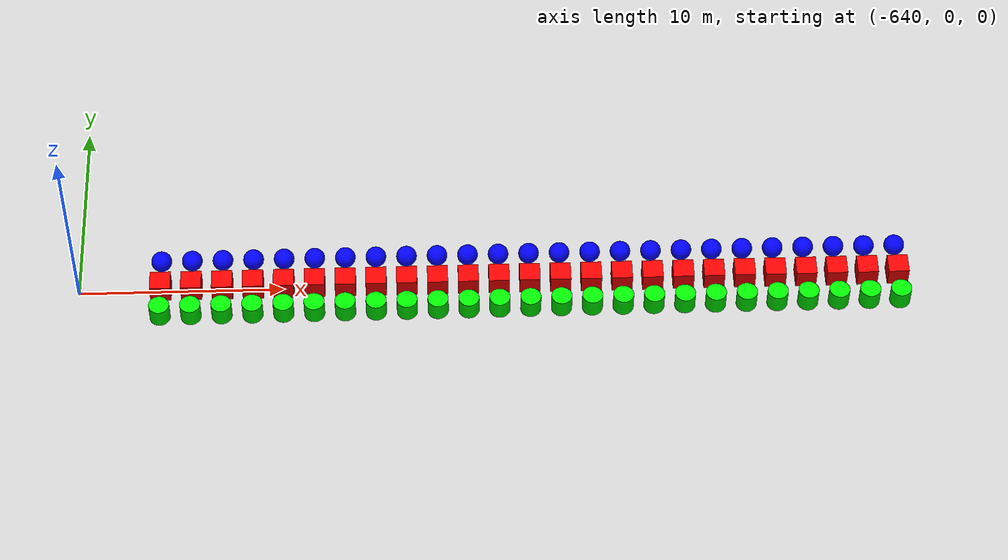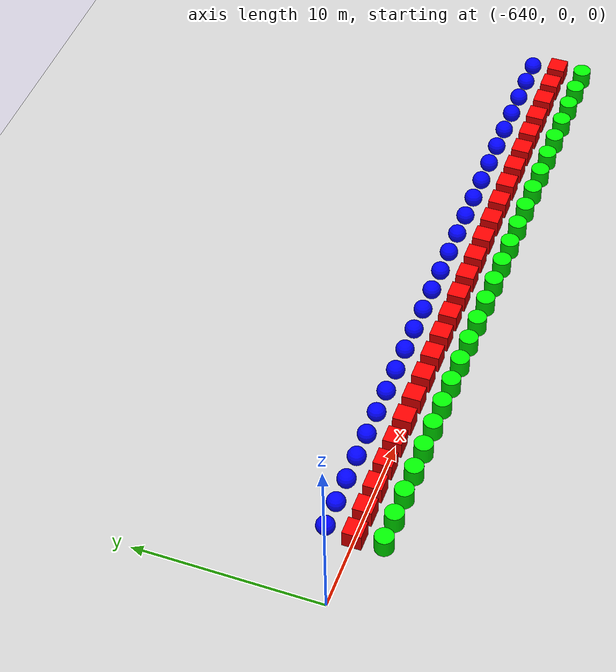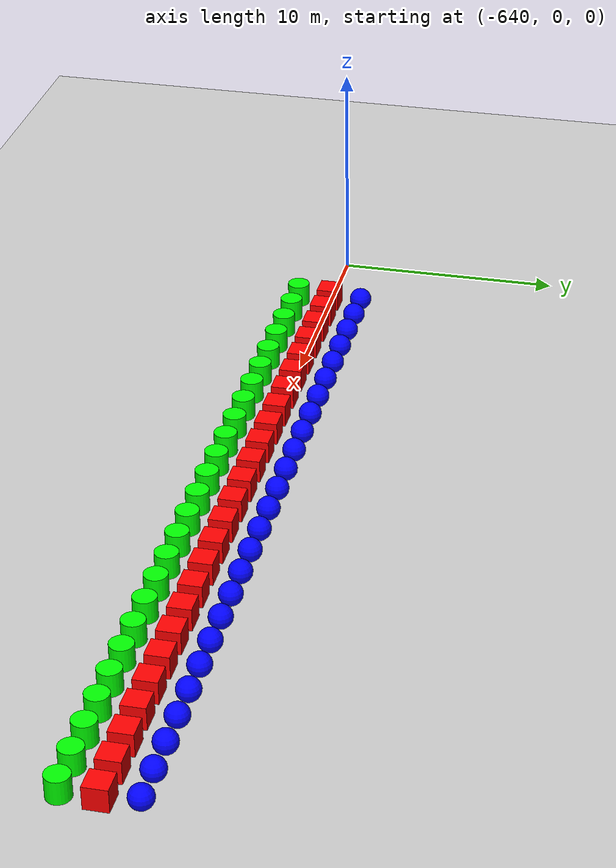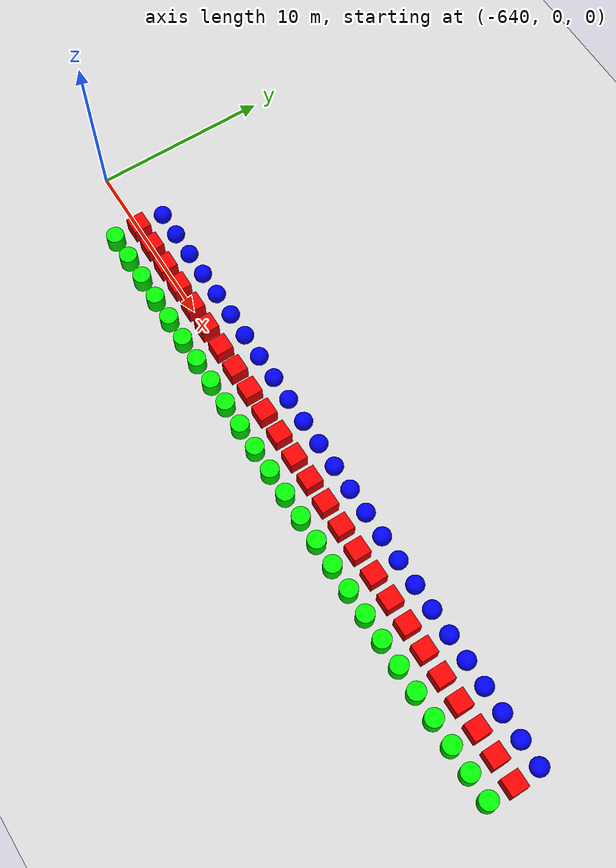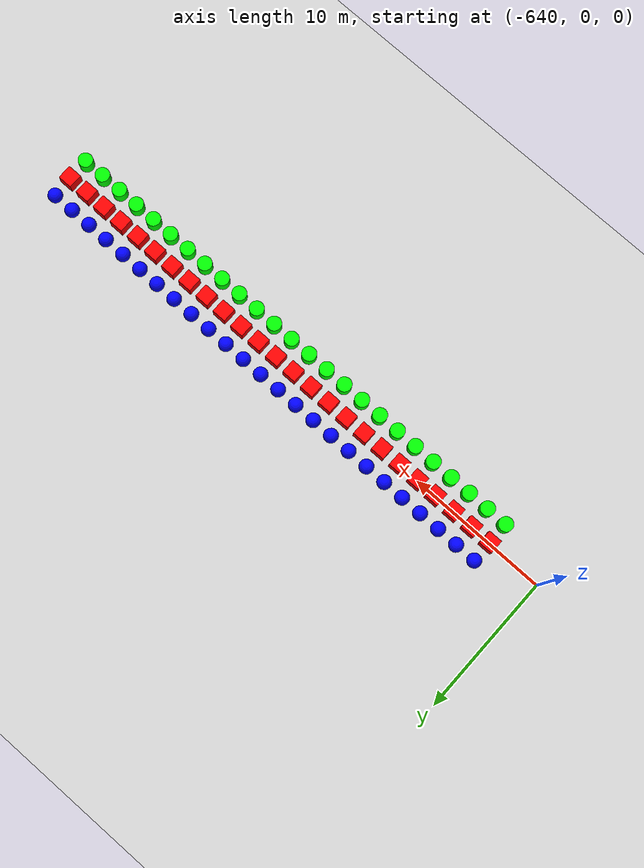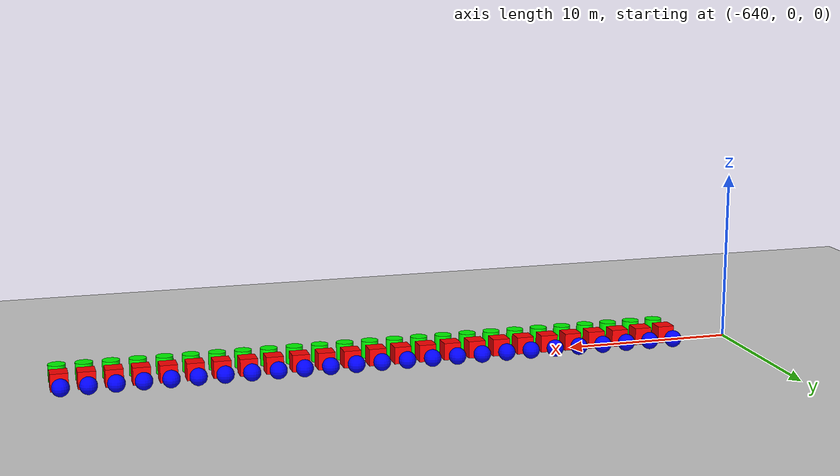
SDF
<sdf version="1.6">
 <world name="shapes">
  <model name="ground_plane">
   <static>true</static>
   <link name="link">
    <collision name="collision">
     <geometry><plane><normal>0 0 1</normal><size>100 100</size></plane></geometry>
    </collision>
    <visual name="visual">
     <geometry><plane><normal>0 0 1</normal><size>100 100</size></plane></geometry>
     <material>
      <ambient>0.8 0.8 0.8 1</ambient>
      <diffuse>0.8 0.8 0.8 1</diffuse>
      <specular>0.8 0.8 0.8 1</specular>
     </material>
    </visual>
   </link>
  </model>
  <model name="box_76">
   <static>true</static>
   <pose>-636.0 0 0.5 0 0 0</pose>
   <link name="box_link">
    <inertial>
     <inertia><ixx>1</ixx><ixy>0</ixy><ixz>0</ixz><iyy>1</iyy><iyz>0</iyz><izz>1</izz></inertia>
     <mass>1.0</mass>
    </inertial>
    <collision name="box_collision"><geometry><box><size>1 1 1</size></box></geometry></collision>
    <visual name="box_visual">
     <geometry><box><size>1 1 1</size></box></geometry>
     <material><ambient>1 0 0 1</ambient><diffuse>1 0 0 1</diffuse><specular>1 0 0 1</specular></material>
    </visual>
   </link>
  </model>
  <model name="cylinder_76">
   <static>true</static>
   <pose>-636.0 -1.5 0.5 0 0 0</pose>
   <link name="cylinder_link">
    <inertial>
     <inertia><ixx>2</ixx><ixy>0</ixy><ixz>0</ixz><iyy>2</iyy><iyz>0</iyz><izz>2</izz></inertia>
     <mass>2.0</mass>
    </inertial>
    <collision name="cylinder_collision">
     <geometry><cylinder><radius>0.5</radius><length>1.0</length></cylinder></geometry>
    </collision>
    <visual name="cylinder_visual">
     <geometry><cylinder><radius>0.5</radius><length>1.0</length></cylinder></geometry>
     <material><ambient>0 1 0 1</ambient><diffuse>0 1 0 1</diffuse><specular>0 1 0 1</specular></material>
    </visual>
   </link>
  </model>
  <model name="sphere_76">
   <static>true</static>
   <pose>-636.0 1.5 0.5 0 0 0</pose>
   <link name="sphere_link">
    <inertial>
     <inertia><ixx>3</ixx><ixy>0</ixy><ixz>0</ixz><iyy>3</iyy><iyz>0</iyz><izz>3</izz></inertia>
     <mass>3.0</mass>
    </inertial>
    <collision name="sphere_collision"><geometry><sphere><radius>0.5</radius></sphere></geometry></collision>
    <visual name="sphere_visual">
     <geometry><sphere><radius>0.5</radius></sphere></geometry>
     <material><ambient>0 0 1 1</ambient><diffuse>0 0 1 1</diffuse><specular>0 0 1 1</specular></material>
    </visual>
   </link>
  </model>
  <model name="box_77">
   <static>true</static>
   <pose>-634.5 0 0.5 0 0 0</pose>
   <link name="box_link">
    <inertial>
     <inertia><ixx>1</ixx><ixy>0</ixy><ixz>0</ixz><iyy>1</iyy><iyz>0</iyz><izz>1</izz></inertia>
     <mass>1.0</mass>
    </inertial>
    <collision name="box_collision"><geometry><box><size>1 1 1</size></box></geometry></collision>
    <visual name="box_visual">
     <geometry><box><size>1 1 1</size></box></geometry>
     <material><ambient>1 0 0 1</ambient><diffuse>1 0 0 1</diffuse><specular>1 0 0 1</specular></material>
    </visual>
   </link>
  </model>
  <model name="cylinder_77">
   <static>true</static>
   <pose>-634.5 -1.5 0.5 0 0 0</pose>
   <link name="cylinder_link">
    <inertial>
     <inertia><ixx>2</ixx><ixy>0</ixy><ixz>0</ixz><iyy>2</iyy><iyz>0</iyz><izz>2</izz></inertia>
     <mass>2.0</mass>
    </inertial>
    <collision name="cylinder_collision">
     <geometry><cylinder><radius>0.5</radius><length>1.0</length></cylinder></geometry>
    </collision>
    <visual name="cylinder_visual">
     <geometry><cylinder><radius>0.5</radius><length>1.0</length></cylinder></geometry>
     <material><ambient>0 1 0 1</ambient><diffuse>0 1 0 1</diffuse><specular>0 1 0 1</specular></material>
    </visual>
   </link>
  </model>
  <model name="sphere_77">
   <static>true</static>
   <pose>-634.5 1.5 0.5 0 0 0</pose>
   <link name="sphere_link">
    <inertial>
     <inertia><ixx>3</ixx><ixy>0</ixy><ixz>0</ixz><iyy>3</iyy><iyz>0</iyz><izz>3</izz></inertia>
     <mass>3.0</mass>
    </inertial>
    <collision name="sphere_collision"><geometry><sphere><radius>0.5</radius></sphere></geometry></collision>
    <visual name="sphere_visual">
     <geometry><sphere><radius>0.5</radius></sphere></geometry>
     <material><ambient>0 0 1 1</ambient><diffuse>0 0 1 1</diffuse><specular>0 0 1 1</specular></material>
    </visual>
   </link>
  </model>
  <model name="box_78">
   <static>true</static>
   <pose>-633.0 0 0.5 0 0 0</pose>
   <link name="box_link">
    <inertial>
     <inertia><ixx>1</ixx><ixy>0</ixy><ixz>0</ixz><iyy>1</iyy><iyz>0</iyz><izz>1</izz></inertia>
     <mass>1.0</mass>
    </inertial>
    <collision name="box_collision"><geometry><box><size>1 1 1</size></box></geometry></collision>
    <visual name="box_visual">
     <geometry><box><size>1 1 1</size></box></geometry>
     <material><ambient>1 0 0 1</ambient><diffuse>1 0 0 1</diffuse><specular>1 0 0 1</specular></material>
    </visual>
   </link>
  </model>
  <model name="cylinder_78">
   <static>true</static>
   <pose>-633.0 -1.5 0.5 0 0 0</pose>
   <link name="cylinder_link">
    <inertial>
     <inertia><ixx>2</ixx><ixy>0</ixy><ixz>0</ixz><iyy>2</iyy><iyz>0</iyz><izz>2</izz></inertia>
     <mass>2.0</mass>
    </inertial>
    <collision name="cylinder_collision">
     <geometry><cylinder><radius>0.5</radius><length>1.0</length></cylinder></geometry>
    </collision>
    <visual name="cylinder_visual">
     <geometry><cylinder><radius>0.5</radius><length>1.0</length></cylinder></geometry>
     <material><ambient>0 1 0 1</ambient><diffuse>0 1 0 1</diffuse><specular>0 1 0 1</specular></material>
    </visual>
   </link>
  </model>
  <model name="sphere_78">
   <static>true</static>
   <pose>-633.0 1.5 0.5 0 0 0</pose>
   <link name="sphere_link">
    <inertial>
     <inertia><ixx>3</ixx><ixy>0</ixy><ixz>0</ixz><iyy>3</iyy><iyz>0</iyz><izz>3</izz></inertia>
     <mass>3.0</mass>
    </inertial>
    <collision name="sphere_collision"><geometry><sphere><radius>0.5</radius></sphere></geometry></collision>
    <visual name="sphere_visual">
     <geometry><sphere><radius>0.5</radius></sphere></geometry>
     <material><ambient>0 0 1 1</ambient><diffuse>0 0 1 1</diffuse><specular>0 0 1 1</specular></material>
    </visual>
   </link>
  </model>
  <model name="box_79">
   <static>true</static>
   <pose>-631.5 0 0.5 0 0 0</pose>
   <link name="box_link">
    <inertial>
     <inertia><ixx>1</ixx><ixy>0</ixy><ixz>0</ixz><iyy>1</iyy><iyz>0</iyz><izz>1</izz></inertia>
     <mass>1.0</mass>
    </inertial>
    <collision name="box_collision"><geometry><box><size>1 1 1</size></box></geometry></collision>
    <visual name="box_visual">
     <geometry><box><size>1 1 1</size></box></geometry>
     <material><ambient>1 0 0 1</ambient><diffuse>1 0 0 1</diffuse><specular>1 0 0 1</specular></material>
    </visual>
   </link>
  </model>
  <model name="cylinder_79">
   <static>true</static>
   <pose>-631.5 -1.5 0.5 0 0 0</pose>
   <link name="cylinder_link">
    <inertial>
     <inertia><ixx>2</ixx><ixy>0</ixy><ixz>0</ixz><iyy>2</iyy><iyz>0</iyz><izz>2</izz></inertia>
     <mass>2.0</mass>
    </inertial>
    <collision name="cylinder_collision">
     <geometry><cylinder><radius>0.5</radius><length>1.0</length></cylinder></geometry>
    </collision>
    <visual name="cylinder_visual">
     <geometry><cylinder><radius>0.5</radius><length>1.0</length></cylinder></geometry>
     <material><ambient>0 1 0 1</ambient><diffuse>0 1 0 1</diffuse><specular>0 1 0 1</specular></material>
    </visual>
   </link>
  </model>
  <model name="sphere_79">
   <static>true</static>
   <pose>-631.5 1.5 0.5 0 0 0</pose>
   <link name="sphere_link">
    <inertial>
     <inertia><ixx>3</ixx><ixy>0</ixy><ixz>0</ixz><iyy>3</iyy><iyz>0</iyz><izz>3</izz></inertia>
     <mass>3.0</mass>
    </inertial>
    <collision name="sphere_collision"><geometry><sphere><radius>0.5</radius></sphere></geometry></collision>
    <visual name="sphere_visual">
     <geometry><sphere><radius>0.5</radius></sphere></geometry>
     <material><ambient>0 0 1 1</ambient><diffuse>0 0 1 1</diffuse><specular>0 0 1 1</specular></material>
    </visual>
   </link>
  </model>
  <model name="box_80">
   <static>true</static>
   <pose>-630.0 0 0.5 0 0 0</pose>
   <link name="box_link">
    <inertial>
     <inertia><ixx>1</ixx><ixy>0</ixy><ixz>0</ixz><iyy>1</iyy><iyz>0</iyz><izz>1</izz></inertia>
     <mass>1.0</mass>
    </inertial>
    <collision name="box_collision"><geometry><box><size>1 1 1</size></box></geometry></collision>
    <visual name="box_visual">
     <geometry><box><size>1 1 1</size></box></geometry>
     <material><ambient>1 0 0 1</ambient><diffuse>1 0 0 1</diffuse><specular>1 0 0 1</specular></material>
    </visual>
   </link>
  </model>
  <model name="cylinder_80">
   <static>true</static>
   <pose>-630.0 -1.5 0.5 0 0 0</pose>
   <link name="cylinder_link">
    <inertial>
     <inertia><ixx>2</ixx><ixy>0</ixy><ixz>0</ixz><iyy>2</iyy><iyz>0</iyz><izz>2</izz></inertia>
     <mass>2.0</mass>
    </inertial>
    <collision name="cylinder_collision">
     <geometry><cylinder><radius>0.5</radius><length>1.0</length></cylinder></geometry>
    </collision>
    <visual name="cylinder_visual">
     <geometry><cylinder><radius>0.5</radius><length>1.0</length></cylinder></geometry>
     <material><ambient>0 1 0 1</ambient><diffuse>0 1 0 1</diffuse><specular>0 1 0 1</specular></material>
    </visual>
   </link>
  </model>
  <model name="sphere_80">
   <static>true</static>
   <pose>-630.0 1.5 0.5 0 0 0</pose>
   <link name="sphere_link">
    <inertial>
     <inertia><ixx>3</ixx><ixy>0</ixy><ixz>0</ixz><iyy>3</iyy><iyz>0</iyz><izz>3</izz></inertia>
     <mass>3.0</mass>
    </inertial>
    <collision name="sphere_collision"><geometry><sphere><radius>0.5</radius></sphere></geometry></collision>
    <visual name="sphere_visual">
     <geometry><sphere><radius>0.5</radius></sphere></geometry>
     <material><ambient>0 0 1 1</ambient><diffuse>0 0 1 1</diffuse><specular>0 0 1 1</specular></material>
    </visual>
   </link>
  </model>
  <model name="box_81">
   <static>true</static>
   <pose>-628.5 0 0.5 0 0 0</pose>
   <link name="box_link">
    <inertial>
     <inertia><ixx>1</ixx><ixy>0</ixy><ixz>0</ixz><iyy>1</iyy><iyz>0</iyz><izz>1</izz></inertia>
     <mass>1.0</mass>
    </inertial>
    <collision name="box_collision"><geometry><box><size>1 1 1</size></box></geometry></collision>
    <visual name="box_visual">
     <geometry><box><size>1 1 1</size></box></geometry>
     <material><ambient>1 0 0 1</ambient><diffuse>1 0 0 1</diffuse><specular>1 0 0 1</specular></material>
    </visual>
   </link>
  </model>
  <model name="cylinder_81">
   <static>true</static>
   <pose>-628.5 -1.5 0.5 0 0 0</pose>
   <link name="cylinder_link">
    <inertial>
     <inertia><ixx>2</ixx><ixy>0</ixy><ixz>0</ixz><iyy>2</iyy><iyz>0</iyz><izz>2</izz></inertia>
     <mass>2.0</mass>
    </inertial>
    <collision name="cylinder_collision">
     <geometry><cylinder><radius>0.5</radius><length>1.0</length></cylinder></geometry>
    </collision>
    <visual name="cylinder_visual">
     <geometry><cylinder><radius>0.5</radius><length>1.0</length></cylinder></geometry>
     <material><ambient>0 1 0 1</ambient><diffuse>0 1 0 1</diffuse><specular>0 1 0 1</specular></material>
    </visual>
   </link>
  </model>
  <model name="sphere_81">
   <static>true</static>
   <pose>-628.5 1.5 0.5 0 0 0</pose>
   <link name="sphere_link">
    <inertial>
     <inertia><ixx>3</ixx><ixy>0</ixy><ixz>0</ixz><iyy>3</iyy><iyz>0</iyz><izz>3</izz></inertia>
     <mass>3.0</mass>
    </inertial>
    <collision name="sphere_collision"><geometry><sphere><radius>0.5</radius></sphere></geometry></collision>
    <visual name="sphere_visual">
     <geometry><sphere><radius>0.5</radius></sphere></geometry>
     <material><ambient>0 0 1 1</ambient><diffuse>0 0 1 1</diffuse><specular>0 0 1 1</specular></material>
    </visual>
   </link>
  </model>
  <model name="box_82">
   <static>true</static>
   <pose>-627.0 0 0.5 0 0 0</pose>
   <link name="box_link">
    <inertial>
     <inertia><ixx>1</ixx><ixy>0</ixy><ixz>0</ixz><iyy>1</iyy><iyz>0</iyz><izz>1</izz></inertia>
     <mass>1.0</mass>
    </inertial>
    <collision name="box_collision"><geometry><box><size>1 1 1</size></box></geometry></collision>
    <visual name="box_visual">
     <geometry><box><size>1 1 1</size></box></geometry>
     <material><ambient>1 0 0 1</ambient><diffuse>1 0 0 1</diffuse><specular>1 0 0 1</specular></material>
    </visual>
   </link>
  </model>
  <model name="cylinder_82">
   <static>true</static>
   <pose>-627.0 -1.5 0.5 0 0 0</pose>
   <link name="cylinder_link">
    <inertial>
     <inertia><ixx>2</ixx><ixy>0</ixy><ixz>0</ixz><iyy>2</iyy><iyz>0</iyz><izz>2</izz></inertia>
     <mass>2.0</mass>
    </inertial>
    <collision name="cylinder_collision">
     <geometry><cylinder><radius>0.5</radius><length>1.0</length></cylinder></geometry>
    </collision>
    <visual name="cylinder_visual">
     <geometry><cylinder><radius>0.5</radius><length>1.0</length></cylinder></geometry>
     <material><ambient>0 1 0 1</ambient><diffuse>0 1 0 1</diffuse><specular>0 1 0 1</specular></material>
    </visual>
   </link>
  </model>
  <model name="sphere_82">
   <static>true</static>
   <pose>-627.0 1.5 0.5 0 0 0</pose>
   <link name="sphere_link">
    <inertial>
     <inertia><ixx>3</ixx><ixy>0</ixy><ixz>0</ixz><iyy>3</iyy><iyz>0</iyz><izz>3</izz></inertia>
     <mass>3.0</mass>
    </inertial>
    <collision name="sphere_collision"><geometry><sphere><radius>0.5</radius></sphere></geometry></collision>
    <visual name="sphere_visual">
     <geometry><sphere><radius>0.5</radius></sphere></geometry>
     <material><ambient>0 0 1 1</ambient><diffuse>0 0 1 1</diffuse><specular>0 0 1 1</specular></material>
    </visual>
   </link>
  </model>
  <model name="box_83">
   <static>true</static>
   <pose>-625.5 0 0.5 0 0 0</pose>
   <link name="box_link">
    <inertial>
     <inertia><ixx>1</ixx><ixy>0</ixy><ixz>0</ixz><iyy>1</iyy><iyz>0</iyz><izz>1</izz></inertia>
     <mass>1.0</mass>
    </inertial>
    <collision name="box_collision"><geometry><box><size>1 1 1</size></box></geometry></collision>
    <visual name="box_visual">
     <geometry><box><size>1 1 1</size></box></geometry>
     <material><ambient>1 0 0 1</ambient><diffuse>1 0 0 1</diffuse><specular>1 0 0 1</specular></material>
    </visual>
   </link>
  </model>
  <model name="cylinder_83">
   <static>true</static>
   <pose>-625.5 -1.5 0.5 0 0 0</pose>
   <link name="cylinder_link">
    <inertial>
     <inertia><ixx>2</ixx><ixy>0</ixy><ixz>0</ixz><iyy>2</iyy><iyz>0</iyz><izz>2</izz></inertia>
     <mass>2.0</mass>
    </inertial>
    <collision name="cylinder_collision">
     <geometry><cylinder><radius>0.5</radius><length>1.0</length></cylinder></geometry>
    </collision>
    <visual name="cylinder_visual">
     <geometry><cylinder><radius>0.5</radius><length>1.0</length></cylinder></geometry>
     <material><ambient>0 1 0 1</ambient><diffuse>0 1 0 1</diffuse><specular>0 1 0 1</specular></material>
    </visual>
   </link>
  </model>
  <model name="sphere_83">
   <static>true</static>
   <pose>-625.5 1.5 0.5 0 0 0</pose>
   <link name="sphere_link">
    <inertial>
     <inertia><ixx>3</ixx><ixy>0</ixy><ixz>0</ixz><iyy>3</iyy><iyz>0</iyz><izz>3</izz></inertia>
     <mass>3.0</mass>
    </inertial>
    <collision name="sphere_collision"><geometry><sphere><radius>0.5</radius></sphere></geometry></collision>
    <visual name="sphere_visual">
     <geometry><sphere><radius>0.5</radius></sphere></geometry>
     <material><ambient>0 0 1 1</ambient><diffuse>0 0 1 1</diffuse><specular>0 0 1 1</specular></material>
    </visual>
   </link>
  </model>
  <model name="box_84">
   <static>true</static>
   <pose>-624.0 0 0.5 0 0 0</pose>
   <link name="box_link">
    <inertial>
     <inertia><ixx>1</ixx><ixy>0</ixy><ixz>0</ixz><iyy>1</iyy><iyz>0</iyz><izz>1</izz></inertia>
     <mass>1.0</mass>
    </inertial>
    <collision name="box_collision"><geometry><box><size>1 1 1</size></box></geometry></collision>
    <visual name="box_visual">
     <geometry><box><size>1 1 1</size></box></geometry>
     <material><ambient>1 0 0 1</ambient><diffuse>1 0 0 1</diffuse><specular>1 0 0 1</specular></material>
    </visual>
   </link>
  </model>
  <model name="cylinder_84">
   <static>true</static>
   <pose>-624.0 -1.5 0.5 0 0 0</pose>
   <link name="cylinder_link">
    <inertial>
     <inertia><ixx>2</ixx><ixy>0</ixy><ixz>0</ixz><iyy>2</iyy><iyz>0</iyz><izz>2</izz></inertia>
     <mass>2.0</mass>
    </inertial>
    <collision name="cylinder_collision">
     <geometry><cylinder><radius>0.5</radius><length>1.0</length></cylinder></geometry>
    </collision>
    <visual name="cylinder_visual">
     <geometry><cylinder><radius>0.5</radius><length>1.0</length></cylinder></geometry>
     <material><ambient>0 1 0 1</ambient><diffuse>0 1 0 1</diffuse><specular>0 1 0 1</specular></material>
    </visual>
   </link>
  </model>
  <model name="sphere_84">
   <static>true</static>
   <pose>-624.0 1.5 0.5 0 0 0</pose>
   <link name="sphere_link">
    <inertial>
     <inertia><ixx>3</ixx><ixy>0</ixy><ixz>0</ixz><iyy>3</iyy><iyz>0</iyz><izz>3</izz></inertia>
     <mass>3.0</mass>
    </inertial>
    <collision name="sphere_collision"><geometry><sphere><radius>0.5</radius></sphere></geometry></collision>
    <visual name="sphere_visual">
     <geometry><sphere><radius>0.5</radius></sphere></geometry>
     <material><ambient>0 0 1 1</ambient><diffuse>0 0 1 1</diffuse><specular>0 0 1 1</specular></material>
    </visual>
   </link>
  </model>
  <model name="box_85">
   <static>true</static>
   <pose>-622.5 0 0.5 0 0 0</pose>
   <link name="box_link">
    <inertial>
     <inertia><ixx>1</ixx><ixy>0</ixy><ixz>0</ixz><iyy>1</iyy><iyz>0</iyz><izz>1</izz></inertia>
     <mass>1.0</mass>
    </inertial>
    <collision name="box_collision"><geometry><box><size>1 1 1</size></box></geometry></collision>
    <visual name="box_visual">
     <geometry><box><size>1 1 1</size></box></geometry>
     <material><ambient>1 0 0 1</ambient><diffuse>1 0 0 1</diffuse><specular>1 0 0 1</specular></material>
    </visual>
   </link>
  </model>
  <model name="cylinder_85">
   <static>true</static>
   <pose>-622.5 -1.5 0.5 0 0 0</pose>
   <link name="cylinder_link">
    <inertial>
     <inertia><ixx>2</ixx><ixy>0</ixy><ixz>0</ixz><iyy>2</iyy><iyz>0</iyz><izz>2</izz></inertia>
     <mass>2.0</mass>
    </inertial>
    <collision name="cylinder_collision">
     <geometry><cylinder><radius>0.5</radius><length>1.0</length></cylinder></geometry>
    </collision>
    <visual name="cylinder_visual">
     <geometry><cylinder><radius>0.5</radius><length>1.0</length></cylinder></geometry>
     <material><ambient>0 1 0 1</ambient><diffuse>0 1 0 1</diffuse><specular>0 1 0 1</specular></material>
    </visual>
   </link>
  </model>
  <model name="sphere_85">
   <static>true</static>
   <pose>-622.5 1.5 0.5 0 0 0</pose>
   <link name="sphere_link">
    <inertial>
     <inertia><ixx>3</ixx><ixy>0</ixy><ixz>0</ixz><iyy>3</iyy><iyz>0</iyz><izz>3</izz></inertia>
     <mass>3.0</mass>
    </inertial>
    <collision name="sphere_collision"><geometry><sphere><radius>0.5</radius></sphere></geometry></collision>
    <visual name="sphere_visual">
     <geometry><sphere><radius>0.5</radius></sphere></geometry>
     <material><ambient>0 0 1 1</ambient><diffuse>0 0 1 1</diffuse><specular>0 0 1 1</specular></material>
    </visual>
   </link>
  </model>
  <model name="box_86">
   <static>true</static>
   <pose>-621.0 0 0.5 0 0 0</pose>
   <link name="box_link">
    <inertial>
     <inertia><ixx>1</ixx><ixy>0</ixy><ixz>0</ixz><iyy>1</iyy><iyz>0</iyz><izz>1</izz></inertia>
     <mass>1.0</mass>
    </inertial>
    <collision name="box_collision"><geometry><box><size>1 1 1</size></box></geometry></collision>
    <visual name="box_visual">
     <geometry><box><size>1 1 1</size></box></geometry>
     <material><ambient>1 0 0 1</ambient><diffuse>1 0 0 1</diffuse><specular>1 0 0 1</specular></material>
    </visual>
   </link>
  </model>
  <model name="cylinder_86">
   <static>true</static>
   <pose>-621.0 -1.5 0.5 0 0 0</pose>
   <link name="cylinder_link">
    <inertial>
     <inertia><ixx>2</ixx><ixy>0</ixy><ixz>0</ixz><iyy>2</iyy><iyz>0</iyz><izz>2</izz></inertia>
     <mass>2.0</mass>
    </inertial>
    <collision name="cylinder_collision">
     <geometry><cylinder><radius>0.5</radius><length>1.0</length></cylinder></geometry>
    </collision>
    <visual name="cylinder_visual">
     <geometry><cylinder><radius>0.5</radius><length>1.0</length></cylinder></geometry>
     <material><ambient>0 1 0 1</ambient><diffuse>0 1 0 1</diffuse><specular>0 1 0 1</specular></material>
    </visual>
   </link>
  </model>
  <model name="sphere_86">
   <static>true</static>
   <pose>-621.0 1.5 0.5 0 0 0</pose>
   <link name="sphere_link">
    <inertial>
     <inertia><ixx>3</ixx><ixy>0</ixy><ixz>0</ixz><iyy>3</iyy><iyz>0</iyz><izz>3</izz></inertia>
     <mass>3.0</mass>
    </inertial>
    <collision name="sphere_collision"><geometry><sphere><radius>0.5</radius></sphere></geometry></collision>
    <visual name="sphere_visual">
     <geometry><sphere><radius>0.5</radius></sphere></geometry>
     <material><ambient>0 0 1 1</ambient><diffuse>0 0 1 1</diffuse><specular>0 0 1 1</specular></material>
    </visual>
   </link>
  </model>
  <model name="box_87">
   <static>true</static>
   <pose>-619.5 0 0.5 0 0 0</pose>
   <link name="box_link">
    <inertial>
     <inertia><ixx>1</ixx><ixy>0</ixy><ixz>0</ixz><iyy>1</iyy><iyz>0</iyz><izz>1</izz></inertia>
     <mass>1.0</mass>
    </inertial>
    <collision name="box_collision"><geometry><box><size>1 1 1</size></box></geometry></collision>
    <visual name="box_visual">
     <geometry><box><size>1 1 1</size></box></geometry>
     <material><ambient>1 0 0 1</ambient><diffuse>1 0 0 1</diffuse><specular>1 0 0 1</specular></material>
    </visual>
   </link>
  </model>
  <model name="cylinder_87">
   <static>true</static>
   <pose>-619.5 -1.5 0.5 0 0 0</pose>
   <link name="cylinder_link">
    <inertial>
     <inertia><ixx>2</ixx><ixy>0</ixy><ixz>0</ixz><iyy>2</iyy><iyz>0</iyz><izz>2</izz></inertia>
     <mass>2.0</mass>
    </inertial>
    <collision name="cylinder_collision">
     <geometry><cylinder><radius>0.5</radius><length>1.0</length></cylinder></geometry>
    </collision>
    <visual name="cylinder_visual">
     <geometry><cylinder><radius>0.5</radius><length>1.0</length></cylinder></geometry>
     <material><ambient>0 1 0 1</ambient><diffuse>0 1 0 1</diffuse><specular>0 1 0 1</specular></material>
    </visual>
   </link>
  </model>
  <model name="sphere_87">
   <static>true</static>
   <pose>-619.5 1.5 0.5 0 0 0</pose>
   <link name="sphere_link">
    <inertial>
     <inertia><ixx>3</ixx><ixy>0</ixy><ixz>0</ixz><iyy>3</iyy><iyz>0</iyz><izz>3</izz></inertia>
     <mass>3.0</mass>
    </inertial>
    <collision name="sphere_collision"><geometry><sphere><radius>0.5</radius></sphere></geometry></collision>
    <visual name="sphere_visual">
     <geometry><sphere><radius>0.5</radius></sphere></geometry>
     <material><ambient>0 0 1 1</ambient><diffuse>0 0 1 1</diffuse><specular>0 0 1 1</specular></material>
    </visual>
   </link>
  </model>
  <model name="box_88">
   <static>true</static>
   <pose>-618.0 0 0.5 0 0 0</pose>
   <link name="box_link">
    <inertial>
     <inertia><ixx>1</ixx><ixy>0</ixy><ixz>0</ixz><iyy>1</iyy><iyz>0</iyz><izz>1</izz></inertia>
     <mass>1.0</mass>
    </inertial>
    <collision name="box_collision"><geometry><box><size>1 1 1</size></box></geometry></collision>
    <visual name="box_visual">
     <geometry><box><size>1 1 1</size></box></geometry>
     <material><ambient>1 0 0 1</ambient><diffuse>1 0 0 1</diffuse><specular>1 0 0 1</specular></material>
    </visual>
   </link>
  </model>
  <model name="cylinder_88">
   <static>true</static>
   <pose>-618.0 -1.5 0.5 0 0 0</pose>
   <link name="cylinder_link">
    <inertial>
     <inertia><ixx>2</ixx><ixy>0</ixy><ixz>0</ixz><iyy>2</iyy><iyz>0</iyz><izz>2</izz></inertia>
     <mass>2.0</mass>
    </inertial>
    <collision name="cylinder_collision">
     <geometry><cylinder><radius>0.5</radius><length>1.0</length></cylinder></geometry>
    </collision>
    <visual name="cylinder_visual">
     <geometry><cylinder><radius>0.5</radius><length>1.0</length></cylinder></geometry>
     <material><ambient>0 1 0 1</ambient><diffuse>0 1 0 1</diffuse><specular>0 1 0 1</specular></material>
    </visual>
   </link>
  </model>
  <model name="sphere_88">
   <static>true</static>
   <pose>-618.0 1.5 0.5 0 0 0</pose>
   <link name="sphere_link">
    <inertial>
     <inertia><ixx>3</ixx><ixy>0</ixy><ixz>0</ixz><iyy>3</iyy><iyz>0</iyz><izz>3</izz></inertia>
     <mass>3.0</mass>
    </inertial>
    <collision name="sphere_collision"><geometry><sphere><radius>0.5</radius></sphere></geometry></collision>
    <visual name="sphere_visual">
     <geometry><sphere><radius>0.5</radius></sphere></geometry>
     <material><ambient>0 0 1 1</ambient><diffuse>0 0 1 1</diffuse><specular>0 0 1 1</specular></material>
    </visual>
   </link>
  </model>
  <model name="box_89">
   <static>true</static>
   <pose>-616.5 0 0.5 0 0 0</pose>
   <link name="box_link">
    <inertial>
     <inertia><ixx>1</ixx><ixy>0</ixy><ixz>0</ixz><iyy>1</iyy><iyz>0</iyz><izz>1</izz></inertia>
     <mass>1.0</mass>
    </inertial>
    <collision name="box_collision"><geometry><box><size>1 1 1</size></box></geometry></collision>
    <visual name="box_visual">
     <geometry><box><size>1 1 1</size></box></geometry>
     <material><ambient>1 0 0 1</ambient><diffuse>1 0 0 1</diffuse><specular>1 0 0 1</specular></material>
    </visual>
   </link>
  </model>
  <model name="cylinder_89">
   <static>true</static>
   <pose>-616.5 -1.5 0.5 0 0 0</pose>
   <link name="cylinder_link">
    <inertial>
     <inertia><ixx>2</ixx><ixy>0</ixy><ixz>0</ixz><iyy>2</iyy><iyz>0</iyz><izz>2</izz></inertia>
     <mass>2.0</mass>
    </inertial>
    <collision name="cylinder_collision">
     <geometry><cylinder><radius>0.5</radius><length>1.0</length></cylinder></geometry>
    </collision>
    <visual name="cylinder_visual">
     <geometry><cylinder><radius>0.5</radius><length>1.0</length></cylinder></geometry>
     <material><ambient>0 1 0 1</ambient><diffuse>0 1 0 1</diffuse><specular>0 1 0 1</specular></material>
    </visual>
   </link>
  </model>
  <model name="sphere_89">
   <static>true</static>
   <pose>-616.5 1.5 0.5 0 0 0</pose>
   <link name="sphere_link">
    <inertial>
     <inertia><ixx>3</ixx><ixy>0</ixy><ixz>0</ixz><iyy>3</iyy><iyz>0</iyz><izz>3</izz></inertia>
     <mass>3.0</mass>
    </inertial>
    <collision name="sphere_collision"><geometry><sphere><radius>0.5</radius></sphere></geometry></collision>
    <visual name="sphere_visual">
     <geometry><sphere><radius>0.5</radius></sphere></geometry>
     <material><ambient>0 0 1 1</ambient><diffuse>0 0 1 1</diffuse><specular>0 0 1 1</specular></material>
    </visual>
   </link>
  </model>
  <model name="box_90">
   <static>true</static>
   <pose>-615.0 0 0.5 0 0 0</pose>
   <link name="box_link">
    <inertial>
     <inertia><ixx>1</ixx><ixy>0</ixy><ixz>0</ixz><iyy>1</iyy><iyz>0</iyz><izz>1</izz></inertia>
     <mass>1.0</mass>
    </inertial>
    <collision name="box_collision"><geometry><box><size>1 1 1</size></box></geometry></collision>
    <visual name="box_visual">
     <geometry><box><size>1 1 1</size></box></geometry>
     <material><ambient>1 0 0 1</ambient><diffuse>1 0 0 1</diffuse><specular>1 0 0 1</specular></material>
    </visual>
   </link>
  </model>
  <model name="cylinder_90">
   <static>true</static>
   <pose>-615.0 -1.5 0.5 0 0 0</pose>
   <link name="cylinder_link">
    <inertial>
     <inertia><ixx>2</ixx><ixy>0</ixy><ixz>0</ixz><iyy>2</iyy><iyz>0</iyz><izz>2</izz></inertia>
     <mass>2.0</mass>
    </inertial>
    <collision name="cylinder_collision">
     <geometry><cylinder><radius>0.5</radius><length>1.0</length></cylinder></geometry>
    </collision>
    <visual name="cylinder_visual">
     <geometry><cylinder><radius>0.5</radius><length>1.0</length></cylinder></geometry>
     <material><ambient>0 1 0 1</ambient><diffuse>0 1 0 1</diffuse><specular>0 1 0 1</specular></material>
    </visual>
   </link>
  </model>
  <model name="sphere_90">
   <static>true</static>
   <pose>-615.0 1.5 0.5 0 0 0</pose>
   <link name="sphere_link">
    <inertial>
     <inertia><ixx>3</ixx><ixy>0</ixy><ixz>0</ixz><iyy>3</iyy><iyz>0</iyz><izz>3</izz></inertia>
     <mass>3.0</mass>
    </inertial>
    <collision name="sphere_collision"><geometry><sphere><radius>0.5</radius></sphere></geometry></collision>
    <visual name="sphere_visual">
     <geometry><sphere><radius>0.5</radius></sphere></geometry>
     <material><ambient>0 0 1 1</ambient><diffuse>0 0 1 1</diffuse><specular>0 0 1 1</specular></material>
    </visual>
   </link>
  </model>
  <model name="box_91">
   <static>true</static>
   <pose>-613.5 0 0.5 0 0 0</pose>
   <link name="box_link">
    <inertial>
     <inertia><ixx>1</ixx><ixy>0</ixy><ixz>0</ixz><iyy>1</iyy><iyz>0</iyz><izz>1</izz></inertia>
     <mass>1.0</mass>
    </inertial>
    <collision name="box_collision"><geometry><box><size>1 1 1</size></box></geometry></collision>
    <visual name="box_visual">
     <geometry><box><size>1 1 1</size></box></geometry>
     <material><ambient>1 0 0 1</ambient><diffuse>1 0 0 1</diffuse><specular>1 0 0 1</specular></material>
    </visual>
   </link>
  </model>
  <model name="cylinder_91">
   <static>true</static>
   <pose>-613.5 -1.5 0.5 0 0 0</pose>
   <link name="cylinder_link">
    <inertial>
     <inertia><ixx>2</ixx><ixy>0</ixy><ixz>0</ixz><iyy>2</iyy><iyz>0</iyz><izz>2</izz></inertia>
     <mass>2.0</mass>
    </inertial>
    <collision name="cylinder_collision">
     <geometry><cylinder><radius>0.5</radius><length>1.0</length></cylinder></geometry>
    </collision>
    <visual name="cylinder_visual">
     <geometry><cylinder><radius>0.5</radius><length>1.0</length></cylinder></geometry>
     <material><ambient>0 1 0 1</ambient><diffuse>0 1 0 1</diffuse><specular>0 1 0 1</specular></material>
    </visual>
   </link>
  </model>
  <model name="sphere_91">
   <static>true</static>
   <pose>-613.5 1.5 0.5 0 0 0</pose>
   <link name="sphere_link">
    <inertial>
     <inertia><ixx>3</ixx><ixy>0</ixy><ixz>0</ixz><iyy>3</iyy><iyz>0</iyz><izz>3</izz></inertia>
     <mass>3.0</mass>
    </inertial>
    <collision name="sphere_collision"><geometry><sphere><radius>0.5</radius></sphere></geometry></collision>
    <visual name="sphere_visual">
     <geometry><sphere><radius>0.5</radius></sphere></geometry>
     <material><ambient>0 0 1 1</ambient><diffuse>0 0 1 1</diffuse><specular>0 0 1 1</specular></material>
    </visual>
   </link>
  </model>
  <model name="box_92">
   <static>true</static>
   <pose>-612.0 0 0.5 0 0 0</pose>
   <link name="box_link">
    <inertial>
     <inertia><ixx>1</ixx><ixy>0</ixy><ixz>0</ixz><iyy>1</iyy><iyz>0</iyz><izz>1</izz></inertia>
     <mass>1.0</mass>
    </inertial>
    <collision name="box_collision"><geometry><box><size>1 1 1</size></box></geometry></collision>
    <visual name="box_visual">
     <geometry><box><size>1 1 1</size></box></geometry>
     <material><ambient>1 0 0 1</ambient><diffuse>1 0 0 1</diffuse><specular>1 0 0 1</specular></material>
    </visual>
   </link>
  </model>
  <model name="cylinder_92">
   <static>true</static>
   <pose>-612.0 -1.5 0.5 0 0 0</pose>
   <link name="cylinder_link">
    <inertial>
     <inertia><ixx>2</ixx><ixy>0</ixy><ixz>0</ixz><iyy>2</iyy><iyz>0</iyz><izz>2</izz></inertia>
     <mass>2.0</mass>
    </inertial>
    <collision name="cylinder_collision">
     <geometry><cylinder><radius>0.5</radius><length>1.0</length></cylinder></geometry>
    </collision>
    <visual name="cylinder_visual">
     <geometry><cylinder><radius>0.5</radius><length>1.0</length></cylinder></geometry>
     <material><ambient>0 1 0 1</ambient><diffuse>0 1 0 1</diffuse><specular>0 1 0 1</specular></material>
    </visual>
   </link>
  </model>
  <model name="sphere_92">
   <static>true</static>
   <pose>-612.0 1.5 0.5 0 0 0</pose>
   <link name="sphere_link">
    <inertial>
     <inertia><ixx>3</ixx><ixy>0</ixy><ixz>0</ixz><iyy>3</iyy><iyz>0</iyz><izz>3</izz></inertia>
     <mass>3.0</mass>
    </inertial>
    <collision name="sphere_collision"><geometry><sphere><radius>0.5</radius></sphere></geometry></collision>
    <visual name="sphere_visual">
     <geometry><sphere><radius>0.5</radius></sphere></geometry>
     <material><ambient>0 0 1 1</ambient><diffuse>0 0 1 1</diffuse><specular>0 0 1 1</specular></material>
    </visual>
   </link>
  </model>
  <model name="box_93">
   <static>true</static>
   <pose>-610.5 0 0.5 0 0 0</pose>
   <link name="box_link">
    <inertial>
     <inertia><ixx>1</ixx><ixy>0</ixy><ixz>0</ixz><iyy>1</iyy><iyz>0</iyz><izz>1</izz></inertia>
     <mass>1.0</mass>
    </inertial>
    <collision name="box_collision"><geometry><box><size>1 1 1</size></box></geometry></collision>
    <visual name="box_visual">
     <geometry><box><size>1 1 1</size></box></geometry>
     <material><ambient>1 0 0 1</ambient><diffuse>1 0 0 1</diffuse><specular>1 0 0 1</specular></material>
    </visual>
   </link>
  </model>
  <model name="cylinder_93">
   <static>true</static>
   <pose>-610.5 -1.5 0.5 0 0 0</pose>
   <link name="cylinder_link">
    <inertial>
     <inertia><ixx>2</ixx><ixy>0</ixy><ixz>0</ixz><iyy>2</iyy><iyz>0</iyz><izz>2</izz></inertia>
     <mass>2.0</mass>
    </inertial>
    <collision name="cylinder_collision">
     <geometry><cylinder><radius>0.5</radius><length>1.0</length></cylinder></geometry>
    </collision>
    <visual name="cylinder_visual">
     <geometry><cylinder><radius>0.5</radius><length>1.0</length></cylinder></geometry>
     <material><ambient>0 1 0 1</ambient><diffuse>0 1 0 1</diffuse><specular>0 1 0 1</specular></material>
    </visual>
   </link>
  </model>
  <model name="sphere_93">
   <static>true</static>
   <pose>-610.5 1.5 0.5 0 0 0</pose>
   <link name="sphere_link">
    <inertial>
     <inertia><ixx>3</ixx><ixy>0</ixy><ixz>0</ixz><iyy>3</iyy><iyz>0</iyz><izz>3</izz></inertia>
     <mass>3.0</mass>
    </inertial>
    <collision name="sphere_collision"><geometry><sphere><radius>0.5</radius></sphere></geometry></collision>
    <visual name="sphere_visual">
     <geometry><sphere><radius>0.5</radius></sphere></geometry>
     <material><ambient>0 0 1 1</ambient><diffuse>0 0 1 1</diffuse><specular>0 0 1 1</specular></material>
    </visual>
   </link>
  </model>
  <model name="box_94">
   <static>true</static>
   <pose>-609.0 0 0.5 0 0 0</pose>
   <link name="box_link">
    <inertial>
     <inertia><ixx>1</ixx><ixy>0</ixy><ixz>0</ixz><iyy>1</iyy><iyz>0</iyz><izz>1</izz></inertia>
     <mass>1.0</mass>
    </inertial>
    <collision name="box_collision"><geometry><box><size>1 1 1</size></box></geometry></collision>
    <visual name="box_visual">
     <geometry><box><size>1 1 1</size></box></geometry>
     <material><ambient>1 0 0 1</ambient><diffuse>1 0 0 1</diffuse><specular>1 0 0 1</specular></material>
    </visual>
   </link>
  </model>
  <model name="cylinder_94">
   <static>true</static>
   <pose>-609.0 -1.5 0.5 0 0 0</pose>
   <link name="cylinder_link">
    <inertial>
     <inertia><ixx>2</ixx><ixy>0</ixy><ixz>0</ixz><iyy>2</iyy><iyz>0</iyz><izz>2</izz></inertia>
     <mass>2.0</mass>
    </inertial>
    <collision name="cylinder_collision">
     <geometry><cylinder><radius>0.5</radius><length>1.0</length></cylinder></geometry>
    </collision>
    <visual name="cylinder_visual">
     <geometry><cylinder><radius>0.5</radius><length>1.0</length></cylinder></geometry>
     <material><ambient>0 1 0 1</ambient><diffuse>0 1 0 1</diffuse><specular>0 1 0 1</specular></material>
    </visual>
   </link>
  </model>
  <model name="sphere_94">
   <static>true</static>
   <pose>-609.0 1.5 0.5 0 0 0</pose>
   <link name="sphere_link">
    <inertial>
     <inertia><ixx>3</ixx><ixy>0</ixy><ixz>0</ixz><iyy>3</iyy><iyz>0</iyz><izz>3</izz></inertia>
     <mass>3.0</mass>
    </inertial>
    <collision name="sphere_collision"><geometry><sphere><radius>0.5</radius></sphere></geometry></collision>
    <visual name="sphere_visual">
     <geometry><sphere><radius>0.5</radius></sphere></geometry>
     <material><ambient>0 0 1 1</ambient><diffuse>0 0 1 1</diffuse><specular>0 0 1 1</specular></material>
    </visual>
   </link>
  </model>
  <model name="box_95">
   <static>true</static>
   <pose>-607.5 0 0.5 0 0 0</pose>
   <link name="box_link">
    <inertial>
     <inertia><ixx>1</ixx><ixy>0</ixy><ixz>0</ixz><iyy>1</iyy><iyz>0</iyz><izz>1</izz></inertia>
     <mass>1.0</mass>
    </inertial>
    <collision name="box_collision"><geometry><box><size>1 1 1</size></box></geometry></collision>
    <visual name="box_visual">
     <geometry><box><size>1 1 1</size></box></geometry>
     <material><ambient>1 0 0 1</ambient><diffuse>1 0 0 1</diffuse><specular>1 0 0 1</specular></material>
    </visual>
   </link>
  </model>
  <model name="cylinder_95">
   <static>true</static>
   <pose>-607.5 -1.5 0.5 0 0 0</pose>
   <link name="cylinder_link">
    <inertial>
     <inertia><ixx>2</ixx><ixy>0</ixy><ixz>0</ixz><iyy>2</iyy><iyz>0</iyz><izz>2</izz></inertia>
     <mass>2.0</mass>
    </inertial>
    <collision name="cylinder_collision">
     <geometry><cylinder><radius>0.5</radius><length>1.0</length></cylinder></geometry>
    </collision>
    <visual name="cylinder_visual">
     <geometry><cylinder><radius>0.5</radius><length>1.0</length></cylinder></geometry>
     <material><ambient>0 1 0 1</ambient><diffuse>0 1 0 1</diffuse><specular>0 1 0 1</specular></material>
    </visual>
   </link>
  </model>
  <model name="sphere_95">
   <static>true</static>
   <pose>-607.5 1.5 0.5 0 0 0</pose>
   <link name="sphere_link">
    <inertial>
     <inertia><ixx>3</ixx><ixy>0</ixy><ixz>0</ixz><iyy>3</iyy><iyz>0</iyz><izz>3</izz></inertia>
     <mass>3.0</mass>
    </inertial>
    <collision name="sphere_collision"><geometry><sphere><radius>0.5</radius></sphere></geometry></collision>
    <visual name="sphere_visual">
     <geometry><sphere><radius>0.5</radius></sphere></geometry>
     <material><ambient>0 0 1 1</ambient><diffuse>0 0 1 1</diffuse><specular>0 0 1 1</specular></material>
    </visual>
   </link>
  </model>
  <model name="box_96">
   <static>true</static>
   <pose>-606.0 0 0.5 0 0 0</pose>
   <link name="box_link">
    <inertial>
     <inertia><ixx>1</ixx><ixy>0</ixy><ixz>0</ixz><iyy>1</iyy><iyz>0</iyz><izz>1</izz></inertia>
     <mass>1.0</mass>
    </inertial>
    <collision name="box_collision"><geometry><box><size>1 1 1</size></box></geometry></collision>
    <visual name="box_visual">
     <geometry><box><size>1 1 1</size></box></geometry>
     <material><ambient>1 0 0 1</ambient><diffuse>1 0 0 1</diffuse><specular>1 0 0 1</specular></material>
    </visual>
   </link>
  </model>
  <model name="cylinder_96">
   <static>true</static>
   <pose>-606.0 -1.5 0.5 0 0 0</pose>
   <link name="cylinder_link">
    <inertial>
     <inertia><ixx>2</ixx><ixy>0</ixy><ixz>0</ixz><iyy>2</iyy><iyz>0</iyz><izz>2</izz></inertia>
     <mass>2.0</mass>
    </inertial>
    <collision name="cylinder_collision">
     <geometry><cylinder><radius>0.5</radius><length>1.0</length></cylinder></geometry>
    </collision>
    <visual name="cylinder_visual">
     <geometry><cylinder><radius>0.5</radius><length>1.0</length></cylinder></geometry>
     <material><ambient>0 1 0 1</ambient><diffuse>0 1 0 1</diffuse><specular>0 1 0 1</specular></material>
    </visual>
   </link>
  </model>
  <model name="sphere_96">
   <static>true</static>
   <pose>-606.0 1.5 0.5 0 0 0</pose>
   <link name="sphere_link">
    <inertial>
     <inertia><ixx>3</ixx><ixy>0</ixy><ixz>0</ixz><iyy>3</iyy><iyz>0</iyz><izz>3</izz></inertia>
     <mass>3.0</mass>
    </inertial>
    <collision name="sphere_collision"><geometry><sphere><radius>0.5</radius></sphere></geometry></collision>
    <visual name="sphere_visual">
     <geometry><sphere><radius>0.5</radius></sphere></geometry>
     <material><ambient>0 0 1 1</ambient><diffuse>0 0 1 1</diffuse><specular>0 0 1 1</specular></material>
    </visual>
   </link>
  </model>
  <model name="box_97">
   <static>true</static>
   <pose>-604.5 0 0.5 0 0 0</pose>
   <link name="box_link">
    <inertial>
     <inertia><ixx>1</ixx><ixy>0</ixy><ixz>0</ixz><iyy>1</iyy><iyz>0</iyz><izz>1</izz></inertia>
     <mass>1.0</mass>
    </inertial>
    <collision name="box_collision"><geometry><box><size>1 1 1</size></box></geometry></collision>
    <visual name="box_visual">
     <geometry><box><size>1 1 1</size></box></geometry>
     <material><ambient>1 0 0 1</ambient><diffuse>1 0 0 1</diffuse><specular>1 0 0 1</specular></material>
    </visual>
   </link>
  </model>
  <model name="cylinder_97">
   <static>true</static>
   <pose>-604.5 -1.5 0.5 0 0 0</pose>
   <link name="cylinder_link">
    <inertial>
     <inertia><ixx>2</ixx><ixy>0</ixy><ixz>0</ixz><iyy>2</iyy><iyz>0</iyz><izz>2</izz></inertia>
     <mass>2.0</mass>
    </inertial>
    <collision name="cylinder_collision">
     <geometry><cylinder><radius>0.5</radius><length>1.0</length></cylinder></geometry>
    </collision>
    <visual name="cylinder_visual">
     <geometry><cylinder><radius>0.5</radius><length>1.0</length></cylinder></geometry>
     <material><ambient>0 1 0 1</ambient><diffuse>0 1 0 1</diffuse><specular>0 1 0 1</specular></material>
    </visual>
   </link>
  </model>
  <model name="sphere_97">
   <static>true</static>
   <pose>-604.5 1.5 0.5 0 0 0</pose>
   <link name="sphere_link">
    <inertial>
     <inertia><ixx>3</ixx><ixy>0</ixy><ixz>0</ixz><iyy>3</iyy><iyz>0</iyz><izz>3</izz></inertia>
     <mass>3.0</mass>
    </inertial>
    <collision name="sphere_collision"><geometry><sphere><radius>0.5</radius></sphere></geometry></collision>
    <visual name="sphere_visual">
     <geometry><sphere><radius>0.5</radius></sphere></geometry>
     <material><ambient>0 0 1 1</ambient><diffuse>0 0 1 1</diffuse><specular>0 0 1 1</specular></material>
    </visual>
   </link>
  </model>
  <model name="box_98">
   <static>true</static>
   <pose>-603.0 0 0.5 0 0 0</pose>
   <link name="box_link">
    <inertial>
     <inertia><ixx>1</ixx><ixy>0</ixy><ixz>0</ixz><iyy>1</iyy><iyz>0</iyz><izz>1</izz></inertia>
     <mass>1.0</mass>
    </inertial>
    <collision name="box_collision"><geometry><box><size>1 1 1</size></box></geometry></collision>
    <visual name="box_visual">
     <geometry><box><size>1 1 1</size></box></geometry>
     <material><ambient>1 0 0 1</ambient><diffuse>1 0 0 1</diffuse><specular>1 0 0 1</specular></material>
    </visual>
   </link>
  </model>
  <model name="cylinder_98">
   <static>true</static>
   <pose>-603.0 -1.5 0.5 0 0 0</pose>
   <link name="cylinder_link">
    <inertial>
     <inertia><ixx>2</ixx><ixy>0</ixy><ixz>0</ixz><iyy>2</iyy><iyz>0</iyz><izz>2</izz></inertia>
     <mass>2.0</mass>
    </inertial>
    <collision name="cylinder_collision">
     <geometry><cylinder><radius>0.5</radius><length>1.0</length></cylinder></geometry>
    </collision>
    <visual name="cylinder_visual">
     <geometry><cylinder><radius>0.5</radius><length>1.0</length></cylinder></geometry>
     <material><ambient>0 1 0 1</ambient><diffuse>0 1 0 1</diffuse><specular>0 1 0 1</specular></material>
    </visual>
   </link>
  </model>
  <model name="sphere_98">
   <static>true</static>
   <pose>-603.0 1.5 0.5 0 0 0</pose>
   <link name="sphere_link">
    <inertial>
     <inertia><ixx>3</ixx><ixy>0</ixy><ixz>0</ixz><iyy>3</iyy><iyz>0</iyz><izz>3</izz></inertia>
     <mass>3.0</mass>
    </inertial>
    <collision name="sphere_collision"><geometry><sphere><radius>0.5</radius></sphere></geometry></collision>
    <visual name="sphere_visual">
     <geometry><sphere><radius>0.5</radius></sphere></geometry>
     <material><ambient>0 0 1 1</ambient><diffuse>0 0 1 1</diffuse><specular>0 0 1 1</specular></material>
    </visual>
   </link>
  </model>
  <model name="box_99">
   <static>true</static>
   <pose>-601.5 0 0.5 0 0 0</pose>
   <link name="box_link">
    <inertial>
     <inertia><ixx>1</ixx><ixy>0</ixy><ixz>0</ixz><iyy>1</iyy><iyz>0</iyz><izz>1</izz></inertia>
     <mass>1.0</mass>
    </inertial>
    <collision name="box_collision"><geometry><box><size>1 1 1</size></box></geometry></collision>
    <visual name="box_visual">
     <geometry><box><size>1 1 1</size></box></geometry>
     <material><ambient>1 0 0 1</ambient><diffuse>1 0 0 1</diffuse><specular>1 0 0 1</specular></material>
    </visual>
   </link>
  </model>
  <model name="cylinder_99">
   <static>true</static>
   <pose>-601.5 -1.5 0.5 0 0 0</pose>
   <link name="cylinder_link">
    <inertial>
     <inertia><ixx>2</ixx><ixy>0</ixy><ixz>0</ixz><iyy>2</iyy><iyz>0</iyz><izz>2</izz></inertia>
     <mass>2.0</mass>
    </inertial>
    <collision name="cylinder_collision">
     <geometry><cylinder><radius>0.5</radius><length>1.0</length></cylinder></geometry>
    </collision>
    <visual name="cylinder_visual">
     <geometry><cylinder><radius>0.5</radius><length>1.0</length></cylinder></geometry>
     <material><ambient>0 1 0 1</ambient><diffuse>0 1 0 1</diffuse><specular>0 1 0 1</specular></material>
    </visual>
   </link>
  </model>
  <model name="sphere_99">
   <static>true</static>
   <pose>-601.5 1.5 0.5 0 0 0</pose>
   <link name="sphere_link">
    <inertial>
     <inertia><ixx>3</ixx><ixy>0</ixy><ixz>0</ixz><iyy>3</iyy><iyz>0</iyz><izz>3</izz></inertia>
     <mass>3.0</mass>
    </inertial>
    <collision name="sphere_collision"><geometry><sphere><radius>0.5</radius></sphere></geometry></collision>
    <visual name="sphere_visual">
     <geometry><sphere><radius>0.5</radius></sphere></geometry>
     <material><ambient>0 0 1 1</ambient><diffuse>0 0 1 1</diffuse><specular>0 0 1 1</specular></material>
    </visual>
   </link>
  </model>
  <model name="box_100">
   <static>true</static>
   <pose>-600.0 0 0.5 0 0 0</pose>
   <link name="box_link">
    <inertial>
     <inertia><ixx>1</ixx><ixy>0</ixy><ixz>0</ixz><iyy>1</iyy><iyz>0</iyz><izz>1</izz></inertia>
     <mass>1.0</mass>
    </inertial>
    <collision name="box_collision"><geometry><box><size>1 1 1</size></box></geometry></collision>
    <visual name="box_visual">
     <geometry><box><size>1 1 1</size></box></geometry>
     <material><ambient>1 0 0 1</ambient><diffuse>1 0 0 1</diffuse><specular>1 0 0 1</specular></material>
    </visual>
   </link>
  </model>
  <model name="cylinder_100">
   <static>true</static>
   <pose>-600.0 -1.5 0.5 0 0 0</pose>
   <link name="cylinder_link">
    <inertial>
     <inertia><ixx>2</ixx><ixy>0</ixy><ixz>0</ixz><iyy>2</iyy><iyz>0</iyz><izz>2</izz></inertia>
     <mass>2.0</mass>
    </inertial>
    <collision name="cylinder_collision">
     <geometry><cylinder><radius>0.5</radius><length>1.0</length></cylinder></geometry>
    </collision>
    <visual name="cylinder_visual">
     <geometry><cylinder><radius>0.5</radius><length>1.0</length></cylinder></geometry>
     <material><ambient>0 1 0 1</ambient><diffuse>0 1 0 1</diffuse><specular>0 1 0 1</specular></material>
    </visual>
   </link>
  </model>
  <model name="sphere_100">
   <static>true</static>
   <pose>-600.0 1.5 0.5 0 0 0</pose>
   <link name="sphere_link">
    <inertial>
     <inertia><ixx>3</ixx><ixy>0</ixy><ixz>0</ixz><iyy>3</iyy><iyz>0</iyz><izz>3</izz></inertia>
     <mass>3.0</mass>
    </inertial>
    <collision name="sphere_collision"><geometry><sphere><radius>0.5</radius></sphere></geometry></collision>
    <visual name="sphere_visual">
     <geometry><sphere><radius>0.5</radius></sphere></geometry>
     <material><ambient>0 0 1 1</ambient><diffuse>0 0 1 1</diffuse><specular>0 0 1 1</specular></material>
    </visual>
   </link>
  </model>
 </world>
</sdf>
